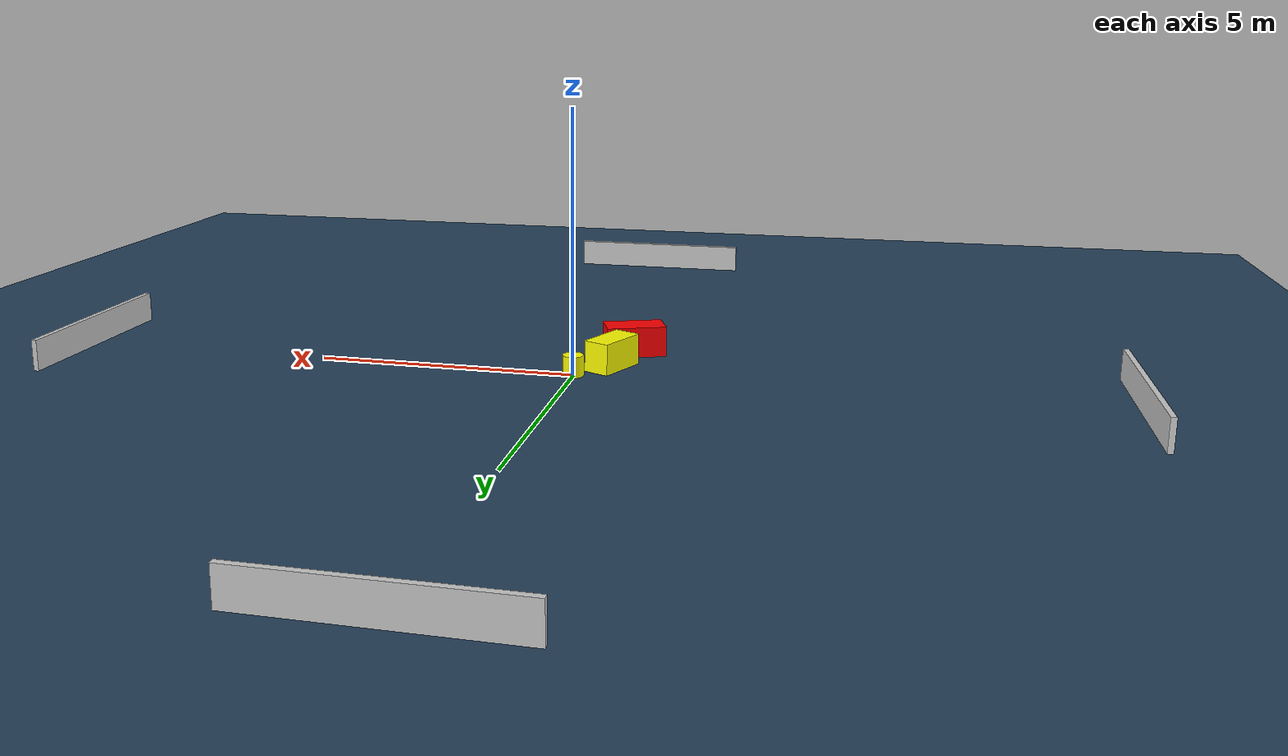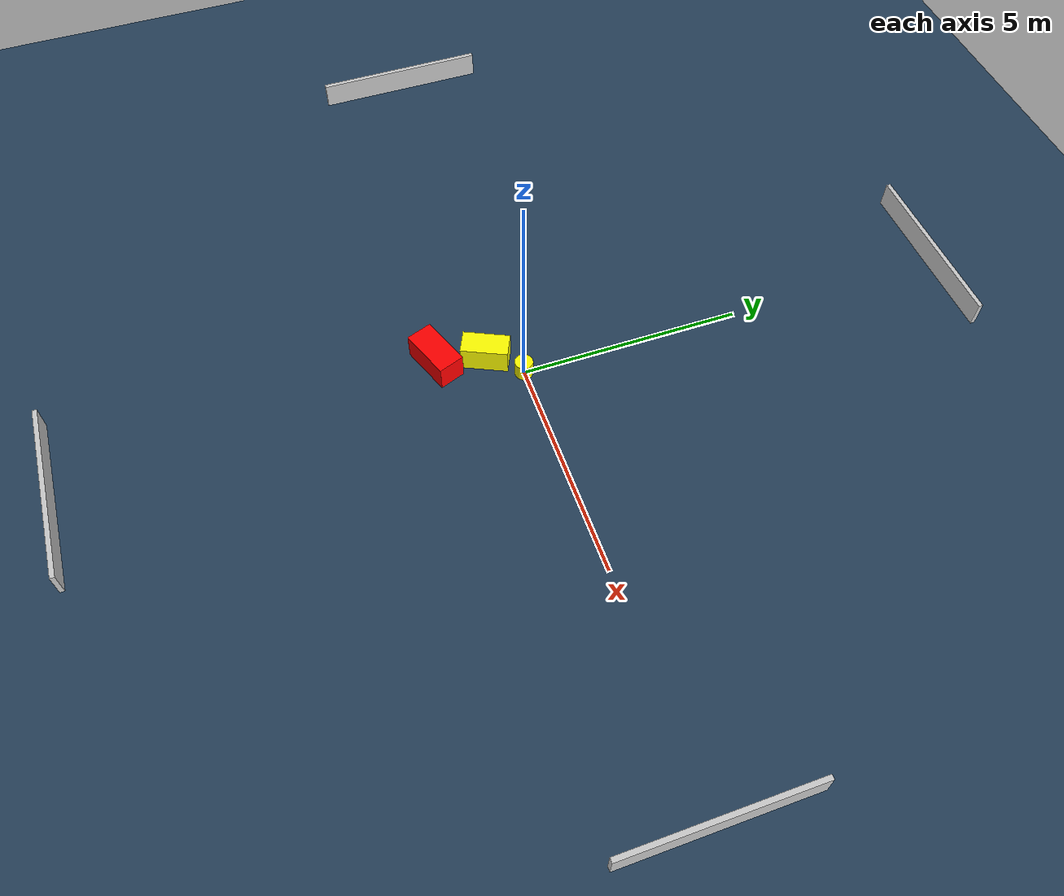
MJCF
<?xml version="1.0" ?>
<mujoco model="generated_environment">
  <option timestep="0.01" integrator="RK4" cone="elliptic"/>
  <default>
    <geom density="1"/>
  </default>
  <asset>
    <texture builtin="gradient" height="3072" name="skybox" rgb1="0.3 0.5 0.7" rgb2="0 0 0" type="skybox" width="512"/>
    <texture builtin="checker" height="300" name="groundplane" rgb1="0.2 0.3 0.4" rgb2="0.1 0.2 0.3" type="2d" width="300"/>
    <material name="groundplane" reflectance="0.2" texrepeat="5 5" texture="groundplane"/>
  </asset>
  <worldbody>
    <light dir="0 0 -1" directional="true" pos="0 0 1.5"/>
    <geom condim="3" friction="0.5 0.005 0.001" material="groundplane" name="floor" pos="0 0 0" size="0 0 0.05" type="plane"/>
    <body name="walls">
      <geom name="wall_1" condim="4" pos="-10.0 0.0 0.3" rgba="0.800000011920929 0.800000011920929 0.800000011920929 1.0" size="0.05 2.0 0.3" type="box"/>
      <geom name="wall_2" condim="4" pos="10.0 0.0 0.3" rgba="0.800000011920929 0.800000011920929 0.800000011920929 1.0" size="0.05 2.0 0.3" type="box"/>
      <geom name="wall_3" condim="4" pos="0.0 -10.0 0.3" rgba="0.800000011920929 0.800000011920929 0.800000011920929 1.0" size="2.0 0.05 0.3" type="box"/>
      <geom name="wall_4" condim="4" pos="0.0 10.0 0.3" rgba="0.800000011920929 0.800000011920929 0.800000011920929 1.0" size="2.0 0.05 0.3" type="box"/>
    </body>
    <body name="robot">
      <joint name="joint_x" type="slide" pos="0 0 0" axis="1 0 0"/>
      <joint name="joint_y" type="slide" pos="0 0 0" axis="0 1 0"/>
      <geom name="robot" type="cylinder" pos="0.0 0.0 0.2" size="0.2 0.2 0.0" mass="5.0" friction="1.0 0.005 0.0001" condim="4" rgba="1.0 1.0 0.0 1.0"/>
    </body>
    <body name="obstacle_1_movable">
      <geom name="obstacle_1_movable" condim="4" pos="-0.6041371022667943 -0.6752562632717466 0.3" euler="0 0 64.95899819077997" friction="0.0 0.005 0.001" rgba="1.0 1.0 0.0 1.0" size="0.5158952750620729 0.2615846126682683 0.3" type="box" mass="0.1"/>
      <joint type="free"/>
    </body>
    <body name="obstacle_2_static">
      <geom name="obstacle_2_static" condim="4" pos="-0.8485721398270036 -1.7288191702793814 0.3" euler="0 0 200.50808122192643" friction="0.0 0.005 0.001" rgba="1.0 0.0 0.0 1.0" size="0.5867253442755248 0.2957770067810319 0.3" type="box"/>
    </body>
  </worldbody>
  <actuator>
    <motor name="actuator_x" joint="joint_x" gear="1" ctrlrange="-1 1"/>
    <motor name="actuator_y" joint="joint_y" gear="1" ctrlrange="-1 1"/>
  </actuator>
</mujoco>
